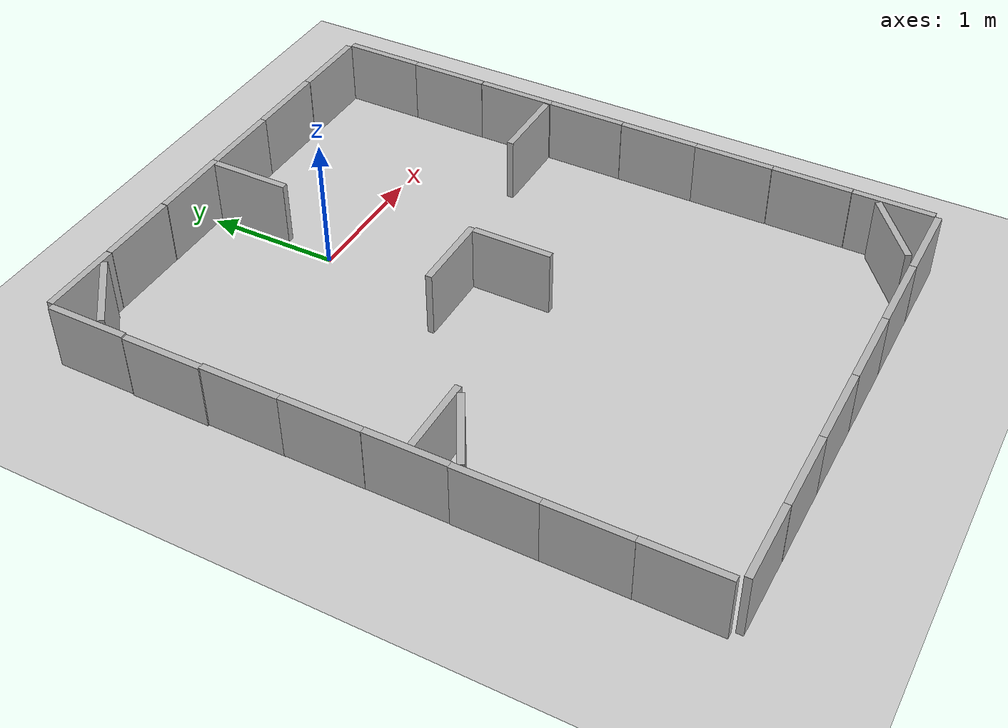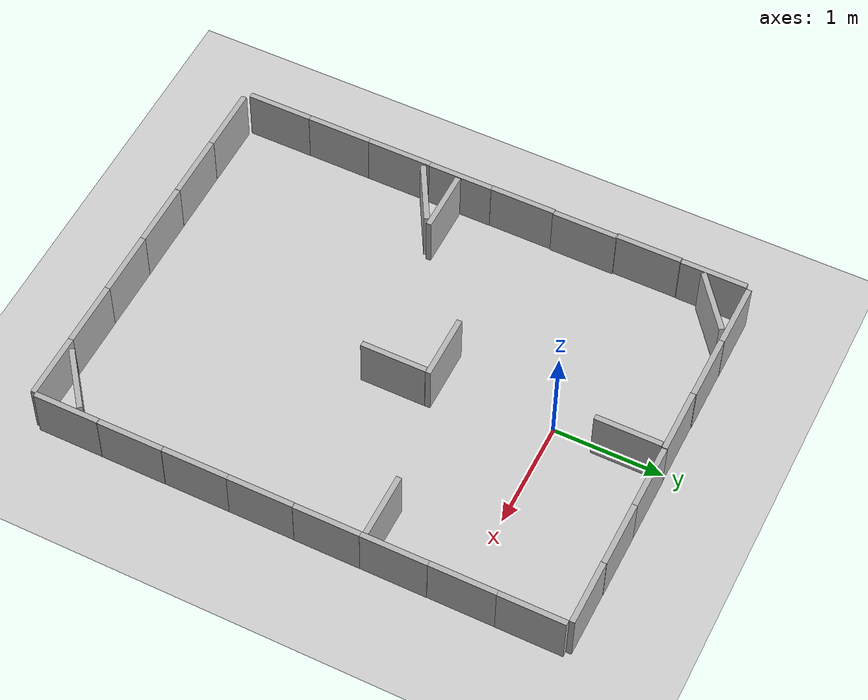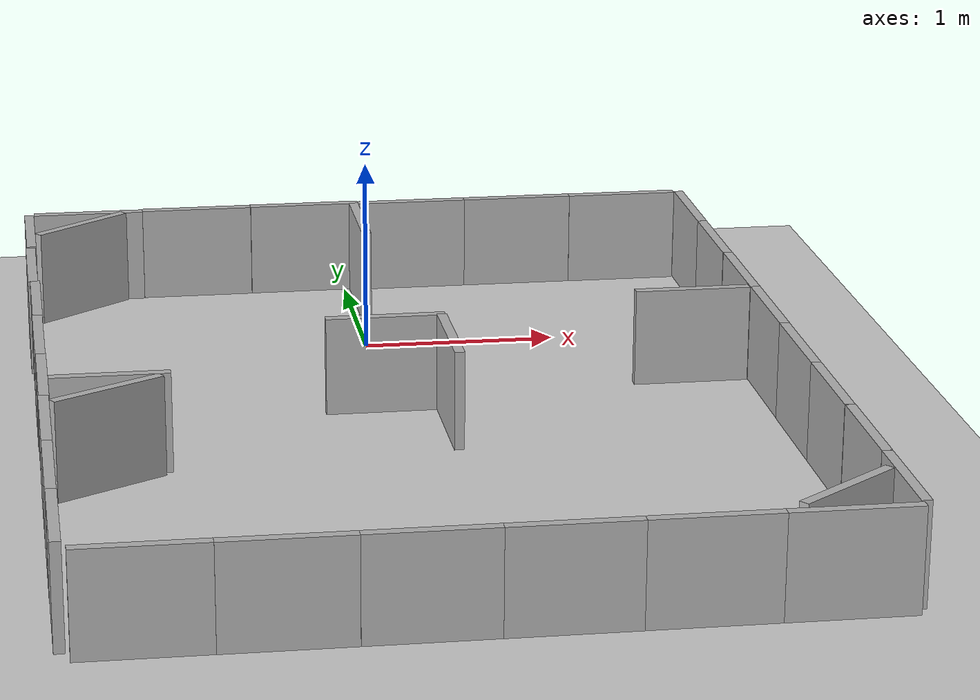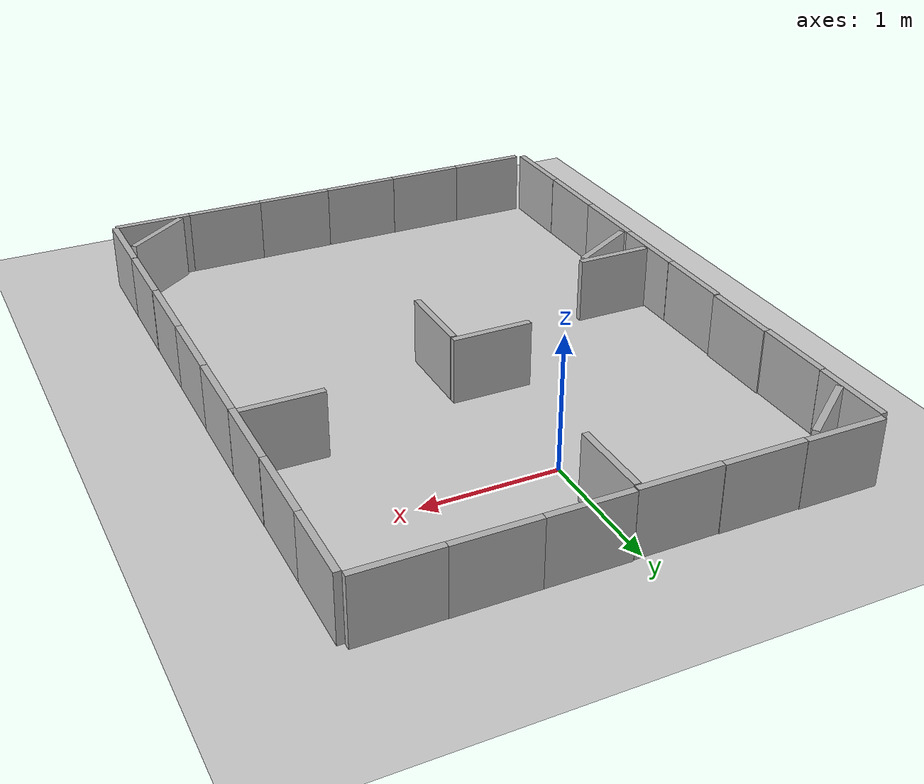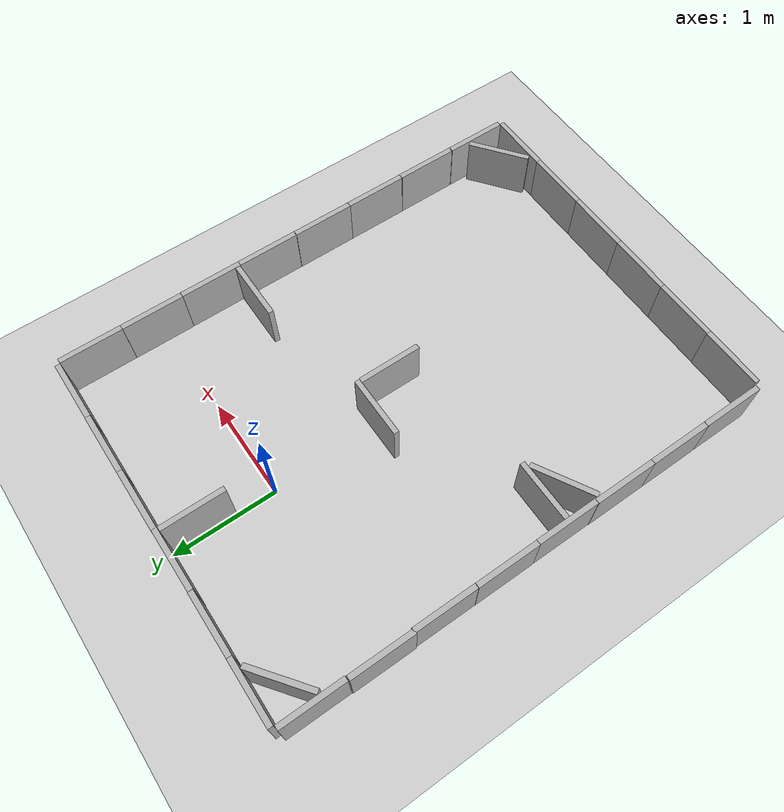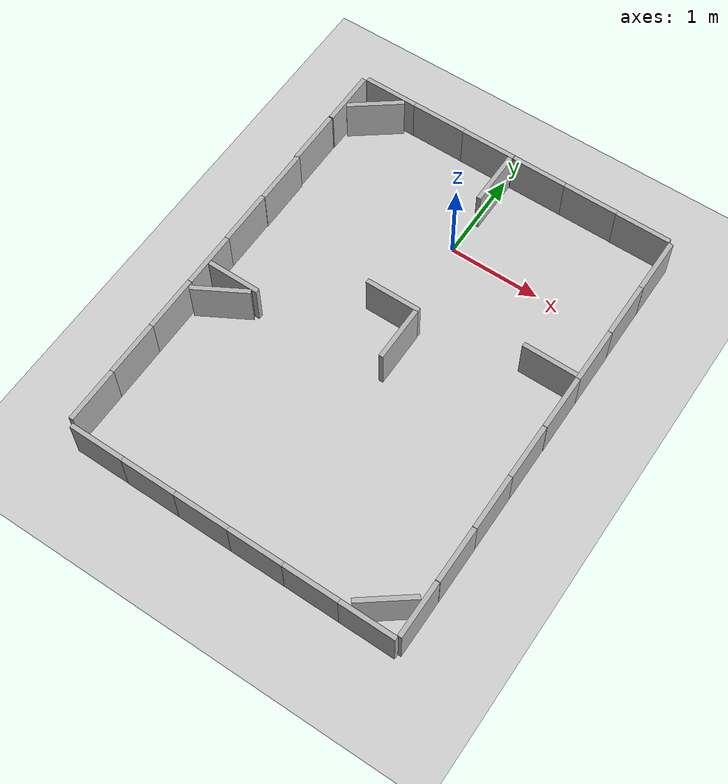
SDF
<?xml version="1.0"?>
<sdf version='1.8'>
  <world name='default'>
    <physics type="ode">
      <real_time_update_rate>1000.0</real_time_update_rate>
      <max_step_size>0.001</max_step_size>
      <real_time_factor>1</real_time_factor>
      <ode>
        <solver>
          <type>quick</type>
          <iters>150</iters>
          <precon_iters>0</precon_iters>
          <sor>1.400000</sor>
          <use_dynamic_moi_rescaling>1</use_dynamic_moi_rescaling>
        </solver>
        <constraints>
          <cfm>0.00001</cfm>
          <erp>0.2</erp>
          <contact_max_correcting_vel>2000.000000</contact_max_correcting_vel>
          <contact_surface_layer>0.01000</contact_surface_layer>
        </constraints>
      </ode>
    </physics>
    <plugin
      filename="gz-sim-physics-system"
      name="gz::sim::systems::Physics">
    </plugin>
    <plugin
      filename="gz-sim-user-commands-system"
      name="gz::sim::systems::UserCommands">
    </plugin>
    <plugin
      filename="gz-sim-scene-broadcaster-system"
      name="gz::sim::systems::SceneBroadcaster">
    </plugin>
    <plugin
      filename="gz-sim-sensors-system"
      name="gz::sim::systems::Sensors">
      <render_engine>ogre2</render_engine>
    </plugin>
    <plugin
      filename="gz-sim-imu-system"
      name="gz::sim::systems::Imu">
    </plugin>

    <gravity>0 0 -9.8000000000000007</gravity>
    <magnetic_field>5.5644999999999998e-06 2.2875799999999999e-05 -4.2388400000000002e-05</magnetic_field>
    <atmosphere type='adiabatic'/>
    <scene>
      <ambient>0.400000006 0.400000006 0.400000006 1</ambient>
      <background>0.699999988 0.699999988 0.699999988 1</background>
      <shadows>true</shadows>
    </scene>
    <model name='ground_plane'>
      <static>true</static>
      <link name='link'>
        <collision name='collision'>
          <geometry>
            <plane>
              <normal>0 0 1</normal>
              <size>100 100</size>
            </plane>
          </geometry>
          <surface>
            <friction>
              <ode/>
            </friction>
            <bounce/>
            <contact/>
          </surface>
        </collision>
        <visual name='visual'>
          <geometry>
            <plane>
              <normal>0 0 1</normal>
              <size>100 100</size>
            </plane>
          </geometry>
          <material>
            <ambient>0.800000012 0.800000012 0.800000012 1</ambient>
            <diffuse>0.800000012 0.800000012 0.800000012 1</diffuse>
            <specular>0.800000012 0.800000012 0.800000012 1</specular>
          </material>
        </visual>
        <pose>0 0 0 0 0 0</pose>
        <inertial>
          <pose>0 0 0 0 0 0</pose>
          <mass>1</mass>
          <inertia>
            <ixx>1</ixx>
            <ixy>0</ixy>
            <ixz>0</ixz>
            <iyy>1</iyy>
            <iyz>0</iyz>
            <izz>1</izz>
          </inertia>
        </inertial>
        <enable_wind>false</enable_wind>
      </link>
      <pose>0 0 0 0 0 0</pose>
      <self_collide>false</self_collide>
    </model>
    <model name='box'>
      <pose>-1.7492099761962892 0.6777790188789368 0.26292604207992554 0 0 0</pose>
      <link name='box_link'>
        <inertial>
          <inertia>
            <ixx>0.16666</ixx>
            <ixy>0</ixy>
            <ixz>0</ixz>
            <iyy>0.16666</iyy>
            <iyz>0</iyz>
            <izz>0.16666</izz>
          </inertia>
          <mass>1</mass>
          <pose>0 0 0 0 0 0</pose>
        </inertial>
        <collision name='box_collision'>
          <geometry>
            <box>
              <size>0.050000000000000003 0.55 0.5</size>
            </box>
          </geometry>
          <surface>
            <friction>
              <ode/>
            </friction>
            <bounce/>
            <contact/>
          </surface>
        </collision>
        <visual name='box_visual'>
          <geometry>
            <box>
              <size>0.050000000000000003 0.59999999999999998 0.5</size>
            </box>
          </geometry>
          <material>
            <ambient>0.300000012 0.300000012 0.300000012 1</ambient>
            <diffuse>0.699999988 0.699999988 0.699999988 1</diffuse>
            <specular>1 1 1 1</specular>
          </material>
        </visual>
        <pose>0 0 0 0 0 0</pose>
        <enable_wind>false</enable_wind>
      </link>
      <static>false</static>
      <self_collide>false</self_collide>
    </model>
    <model name='box_1'>
      <pose>-1.755 0.07 0.26000000000000001 0 0 0</pose>
      <link name='box_link'>
        <inertial>
          <inertia>
            <ixx>0.16666</ixx>
            <ixy>0</ixy>
            <ixz>0</ixz>
            <iyy>0.16666</iyy>
            <iyz>0</iyz>
            <izz>0.16666</izz>
          </inertia>
          <mass>1</mass>
          <pose>0 0 0 0 0 0</pose>
        </inertial>
        <collision name='box_collision'>
          <geometry>
            <box>
              <size>0.050000000000000003 0.55 0.5</size>
            </box>
          </geometry>
          <surface>
            <friction>
              <ode/>
            </friction>
            <bounce/>
            <contact/>
          </surface>
        </collision>
        <visual name='box_visual'>
          <geometry>
            <box>
              <size>0.050000000000000003 0.59999999999999998 0.5</size>
            </box>
          </geometry>
          <material>
            <ambient>0.300000012 0.300000012 0.300000012 1</ambient>
            <diffuse>0.699999988 0.699999988 0.699999988 1</diffuse>
            <specular>1 1 1 1</specular>
          </material>
        </visual>
        <pose>0 0 0 0 0 0</pose>
        <enable_wind>false</enable_wind>
      </link>
      <static>false</static>
      <self_collide>false</self_collide>
    </model>
    <model name='box_2'>
      <pose>-1.745 -0.52 0.26000000000000001 0 0 0</pose>
      <link name='box_link'>
        <inertial>
          <inertia>
            <ixx>0.16666</ixx>
            <ixy>0</ixy>
            <ixz>0</ixz>
            <iyy>0.16666</iyy>
            <iyz>0</iyz>
            <izz>0.16666</izz>
          </inertia>
          <mass>1</mass>
          <pose>0 0 0 0 0 0</pose>
        </inertial>
        <collision name='box_collision'>
          <geometry>
            <box>
              <size>0.050000000000000003 0.55 0.5</size>
            </box>
          </geometry>
          <surface>
            <friction>
              <ode/>
            </friction>
            <bounce/>
            <contact/>
          </surface>
        </collision>
        <visual name='box_visual'>
          <geometry>
            <box>
              <size>0.050000000000000003 0.59999999999999998 0.5</size>
            </box>
          </geometry>
          <material>
            <ambient>0.300000012 0.300000012 0.300000012 1</ambient>
            <diffuse>0.699999988 0.699999988 0.699999988 1</diffuse>
            <specular>1 1 1 1</specular>
          </material>
        </visual>
        <pose>0 0 0 0 0 0</pose>
        <enable_wind>false</enable_wind>
      </link>
      <static>false</static>
      <self_collide>false</self_collide>
    </model>
    <model name='box_3'>
      <pose>-1.7476199626922608 -1.1138999462127686 0.26708531379699707 0 0 0</pose>
      <link name='box_link'>
        <inertial>
          <inertia>
            <ixx>0.16666</ixx>
            <ixy>0</ixy>
            <ixz>0</ixz>
            <iyy>0.16666</iyy>
            <iyz>0</iyz>
            <izz>0.16666</izz>
          </inertia>
          <mass>1</mass>
          <pose>0 0 0 0 0 0</pose>
        </inertial>
        <collision name='box_collision'>
          <geometry>
            <box>
              <size>0.050000000000000003 0.55 0.5</size>
            </box>
          </geometry>
          <surface>
            <friction>
              <ode/>
            </friction>
            <bounce/>
            <contact/>
          </surface>
        </collision>
        <visual name='box_visual'>
          <geometry>
            <box>
              <size>0.050000000000000003 0.59999999999999998 0.5</size>
            </box>
          </geometry>
          <material>
            <ambient>0.300000012 0.300000012 0.300000012 1</ambient>
            <diffuse>0.699999988 0.699999988 0.699999988 1</diffuse>
            <specular>1 1 1 1</specular>
          </material>
        </visual>
        <pose>0 0 0 0 0 0</pose>
        <enable_wind>false</enable_wind>
      </link>
      <static>false</static>
      <self_collide>false</self_collide>
    </model>
    <model name='box_4'>
      <pose>-1.7455800533294679 -1.7115800380706787 0.26702764630317688 0 0 0</pose>
      <link name='box_link'>
        <inertial>
          <inertia>
            <ixx>0.16666</ixx>
            <ixy>0</ixy>
            <ixz>0</ixz>
            <iyy>0.16666</iyy>
            <iyz>0</iyz>
            <izz>0.16666</izz>
          </inertia>
          <mass>1</mass>
          <pose>0 0 0 0 0 0</pose>
        </inertial>
        <collision name='box_collision'>
          <geometry>
            <box>
              <size>0.050000000000000003 0.55 0.5</size>
            </box>
          </geometry>
          <surface>
            <friction>
              <ode/>
            </friction>
            <bounce/>
            <contact/>
          </surface>
        </collision>
        <visual name='box_visual'>
          <geometry>
            <box>
              <size>0.050000000000000003 0.59999999999999998 0.5</size>
            </box>
          </geometry>
          <material>
            <ambient>0.300000012 0.300000012 0.300000012 1</ambient>
            <diffuse>0.699999988 0.699999988 0.699999988 1</diffuse>
            <specular>1 1 1 1</specular>
          </material>
        </visual>
        <pose>0 0 0 0 0 0</pose>
        <enable_wind>false</enable_wind>
      </link>
      <static>false</static>
      <self_collide>false</self_collide>
    </model>
    <model name='box_5'>
      <pose>-1.7484199762344361 -2.311429977416992 0.26691371202468872 0 0 0</pose>
      <link name='box_link'>
        <inertial>
          <inertia>
            <ixx>0.16666</ixx>
            <ixy>0</ixy>
            <ixz>0</ixz>
            <iyy>0.16666</iyy>
            <iyz>0</iyz>
            <izz>0.16666</izz>
          </inertia>
          <mass>1</mass>
          <pose>0 0 0 0 0 0</pose>
        </inertial>
        <collision name='box_collision'>
          <geometry>
            <box>
              <size>0.050000000000000003 0.55 0.5</size>
            </box>
          </geometry>
          <surface>
            <friction>
              <ode/>
            </friction>
            <bounce/>
            <contact/>
          </surface>
        </collision>
        <visual name='box_visual'>
          <geometry>
            <box>
              <size>0.050000000000000003 0.59999999999999998 0.5</size>
            </box>
          </geometry>
          <material>
            <ambient>0.300000012 0.300000012 0.300000012 1</ambient>
            <diffuse>0.699999988 0.699999988 0.699999988 1</diffuse>
            <specular>1 1 1 1</specular>
          </material>
        </visual>
        <pose>0 0 0 0 0 0</pose>
        <enable_wind>false</enable_wind>
      </link>
      <static>false</static>
      <self_collide>false</self_collide>
    </model>
    <model name='box_6'>
      <pose>-1.7483800411224366 -2.9101500511169434 0.26712024211883545 0 0 0</pose>
      <link name='box_link'>
        <inertial>
          <inertia>
            <ixx>0.16666</ixx>
            <ixy>0</ixy>
            <ixz>0</ixz>
            <iyy>0.16666</iyy>
            <iyz>0</iyz>
            <izz>0.16666</izz>
          </inertia>
          <mass>1</mass>
          <pose>0 0 0 0 0 0</pose>
        </inertial>
        <collision name='box_collision'>
          <geometry>
            <box>
              <size>0.050000000000000003 0.55 0.5</size>
            </box>
          </geometry>
          <surface>
            <friction>
              <ode/>
            </friction>
            <bounce/>
            <contact/>
          </surface>
        </collision>
        <visual name='box_visual'>
          <geometry>
            <box>
              <size>0.050000000000000003 0.59999999999999998 0.5</size>
            </box>
          </geometry>
          <material>
            <ambient>0.300000012 0.300000012 0.300000012 1</ambient>
            <diffuse>0.699999988 0.699999988 0.699999988 1</diffuse>
            <specular>1 1 1 1</specular>
          </material>
        </visual>
        <pose>0 0 0 0 0 0</pose>
        <enable_wind>false</enable_wind>
      </link>
      <static>false</static>
      <self_collide>false</self_collide>
    </model>
    <model name='box_7'>
      <pose>-1.7471500396728517 -3.5036098957061768 0.26729947328567505 0 0 0</pose>
      <link name='box_link'>
        <inertial>
          <inertia>
            <ixx>0.16666</ixx>
            <ixy>0</ixy>
            <ixz>0</ixz>
            <iyy>0.16666</iyy>
            <iyz>0</iyz>
            <izz>0.16666</izz>
          </inertia>
          <mass>1</mass>
          <pose>0 0 0 0 0 0</pose>
        </inertial>
        <collision name='box_collision'>
          <geometry>
            <box>
              <size>0.050000000000000003 0.55 0.5</size>
            </box>
          </geometry>
          <surface>
            <friction>
              <ode/>
            </friction>
            <bounce/>
            <contact/>
          </surface>
        </collision>
        <visual name='box_visual'>
          <geometry>
            <box>
              <size>0.050000000000000003 0.59999999999999998 0.5</size>
            </box>
          </geometry>
          <material>
            <ambient>0.300000012 0.300000012 0.300000012 1</ambient>
            <diffuse>0.699999988 0.699999988 0.699999988 1</diffuse>
            <specular>1 1 1 1</specular>
          </material>
        </visual>
        <pose>0 0 0 0 0 0</pose>
        <enable_wind>false</enable_wind>
      </link>
      <static>false</static>
      <self_collide>false</self_collide>
    </model>
    <model name='box_8'>
      <pose>-1.422499990463257 1.0066399574279787 0.25750440359115601 0 0 1.5658000872875657</pose>
      <link name='box_link'>
        <inertial>
          <inertia>
            <ixx>0.16666</ixx>
            <ixy>0</ixy>
            <ixz>0</ixz>
            <iyy>0.16666</iyy>
            <iyz>0</iyz>
            <izz>0.16666</izz>
          </inertia>
          <mass>1</mass>
          <pose>0 0 0 0 0 0</pose>
        </inertial>
        <collision name='box_collision'>
          <geometry>
            <box>
              <size>0.050000000000000003 0.55 0.5</size>
            </box>
          </geometry>
          <surface>
            <friction>
              <ode/>
            </friction>
            <bounce/>
            <contact/>
          </surface>
        </collision>
        <visual name='box_visual'>
          <geometry>
            <box>
              <size>0.050000000000000003 0.59999999999999998 0.5</size>
            </box>
          </geometry>
          <material>
            <ambient>0.300000012 0.300000012 0.300000012 1</ambient>
            <diffuse>0.699999988 0.699999988 0.699999988 1</diffuse>
            <specular>1 1 1 1</specular>
          </material>
        </visual>
        <pose>0 0 0 0 0 0</pose>
        <enable_wind>false</enable_wind>
      </link>
      <static>false</static>
      <self_collide>false</self_collide>
    </model>
    <model name='box_8_1'>
      <pose>-0.8258979976177215 1.0029499530792234 0.26086625456809998 0 0 1.56841005300998</pose>
      <link name='box_link'>
        <inertial>
          <inertia>
            <ixx>0.16666</ixx>
            <ixy>0</ixy>
            <ixz>0</ixz>
            <iyy>0.16666</iyy>
            <iyz>0</iyz>
            <izz>0.16666</izz>
          </inertia>
          <mass>1</mass>
          <pose>0 0 0 0 0 0</pose>
        </inertial>
        <collision name='box_collision'>
          <geometry>
            <box>
              <size>0.050000000000000003 0.55 0.5</size>
            </box>
          </geometry>
          <surface>
            <friction>
              <ode/>
            </friction>
            <bounce/>
            <contact/>
          </surface>
        </collision>
        <visual name='box_visual'>
          <geometry>
            <box>
              <size>0.050000000000000003 0.59999999999999998 0.5</size>
            </box>
          </geometry>
          <material>
            <ambient>0.300000012 0.300000012 0.300000012 1</ambient>
            <diffuse>0.699999988 0.699999988 0.699999988 1</diffuse>
            <specular>1 1 1 1</specular>
          </material>
        </visual>
        <pose>0 0 0 0 0 0</pose>
        <enable_wind>false</enable_wind>
      </link>
      <static>false</static>
      <self_collide>false</self_collide>
    </model>
    <model name='box_8_2'>
      <pose>-0.22502515316009508 0.9984285831451414 0.2626970112323761 0 0 1.5700000841906609</pose>
      <link name='box_link'>
        <inertial>
          <inertia>
            <ixx>0.16666</ixx>
            <ixy>0</ixy>
            <ixz>0</ixz>
            <iyy>0.16666</iyy>
            <iyz>0</iyz>
            <izz>0.16666</izz>
          </inertia>
          <mass>1</mass>
          <pose>0 0 0 0 0 0</pose>
        </inertial>
        <collision name='box_collision'>
          <geometry>
            <box>
              <size>0.050000000000000003 0.55 0.5</size>
            </box>
          </geometry>
          <surface>
            <friction>
              <ode/>
            </friction>
            <bounce/>
            <contact/>
          </surface>
        </collision>
        <visual name='box_visual'>
          <geometry>
            <box>
              <size>0.050000000000000003 0.59999999999999998 0.5</size>
            </box>
          </geometry>
          <material>
            <ambient>0.300000012 0.300000012 0.300000012 1</ambient>
            <diffuse>0.699999988 0.699999988 0.699999988 1</diffuse>
            <specular>1 1 1 1</specular>
          </material>
        </visual>
        <pose>0 0 0 0 0 0</pose>
        <enable_wind>false</enable_wind>
      </link>
      <static>false</static>
      <self_collide>false</self_collide>
    </model>
    <model name='box_8_3'>
      <pose>0.3772270375607515 0.9991031217496191 0.25750398635864258 0 0 1.5658000872875657</pose>
      <link name='box_link'>
        <inertial>
          <inertia>
            <ixx>0.16666</ixx>
            <ixy>0</ixy>
            <ixz>0</ixz>
            <iyy>0.16666</iyy>
            <iyz>0</iyz>
            <izz>0.16666</izz>
          </inertia>
          <mass>1</mass>
          <pose>0 0 0 0 0 0</pose>
        </inertial>
        <collision name='box_collision'>
          <geometry>
            <box>
              <size>0.050000000000000003 0.55 0.5</size>
            </box>
          </geometry>
          <surface>
            <friction>
              <ode/>
            </friction>
            <bounce/>
            <contact/>
          </surface>
        </collision>
        <visual name='box_visual'>
          <geometry>
            <box>
              <size>0.050000000000000003 0.59999999999999998 0.5</size>
            </box>
          </geometry>
          <material>
            <ambient>0.300000012 0.300000012 0.300000012 1</ambient>
            <diffuse>0.699999988 0.699999988 0.699999988 1</diffuse>
            <specular>1 1 1 1</specular>
          </material>
        </visual>
        <pose>0 0 0 0 0 0</pose>
        <enable_wind>false</enable_wind>
      </link>
      <static>false</static>
      <self_collide>false</self_collide>
    </model>
    <model name='box_8_4'>
      <pose>0.976962914249203 0.9965046031326728 0.25750398635864258 0 0 1.5658000872875657</pose>
      <link name='box_link'>
        <inertial>
          <inertia>
            <ixx>0.16666</ixx>
            <ixy>0</ixy>
            <ixz>0</ixz>
            <iyy>0.16666</iyy>
            <iyz>0</iyz>
            <izz>0.16666</izz>
          </inertia>
          <mass>1</mass>
          <pose>0 0 0 0 0 0</pose>
        </inertial>
        <collision name='box_collision'>
          <geometry>
            <box>
              <size>0.050000000000000003 0.55 0.5</size>
            </box>
          </geometry>
          <surface>
            <friction>
              <ode/>
            </friction>
            <bounce/>
            <contact/>
          </surface>
        </collision>
        <visual name='box_visual'>
          <geometry>
            <box>
              <size>0.050000000000000003 0.59999999999999998 0.5</size>
            </box>
          </geometry>
          <material>
            <ambient>0.300000012 0.300000012 0.300000012 1</ambient>
            <diffuse>0.699999988 0.699999988 0.699999988 1</diffuse>
            <specular>1 1 1 1</specular>
          </material>
        </visual>
        <pose>0 0 0 0 0 0</pose>
        <enable_wind>false</enable_wind>
      </link>
      <static>false</static>
      <self_collide>false</self_collide>
    </model>
    <model name='box_8_5'>
      <pose>1.5750763394988407 0.9913790535651015 0.25750398635864258 0 0 1.5658000872875657</pose>
      <link name='box_link'>
        <inertial>
          <inertia>
            <ixx>0.16666</ixx>
            <ixy>0</ixy>
            <ixz>0</ixz>
            <iyy>0.16666</iyy>
            <iyz>0</iyz>
            <izz>0.16666</izz>
          </inertia>
          <mass>1</mass>
          <pose>0 0 0 0 0 0</pose>
        </inertial>
        <collision name='box_collision'>
          <geometry>
            <box>
              <size>0.050000000000000003 0.55 0.5</size>
            </box>
          </geometry>
          <surface>
            <friction>
              <ode/>
            </friction>
            <bounce/>
            <contact/>
          </surface>
        </collision>
        <visual name='box_visual'>
          <geometry>
            <box>
              <size>0.050000000000000003 0.59999999999999998 0.5</size>
            </box>
          </geometry>
          <material>
            <ambient>0.300000012 0.300000012 0.300000012 1</ambient>
            <diffuse>0.699999988 0.699999988 0.699999988 1</diffuse>
            <specular>1 1 1 1</specular>
          </material>
        </visual>
        <pose>0 0 0 0 0 0</pose>
        <enable_wind>false</enable_wind>
      </link>
      <static>false</static>
      <self_collide>false</self_collide>
    </model>
    <model name='box_9'>
      <pose>1.901252963941734 0.6655293306074757 0.26292601227760315 0 0 0</pose>
      <link name='box_link'>
        <inertial>
          <inertia>
            <ixx>0.16666</ixx>
            <ixy>0</ixy>
            <ixz>0</ixz>
            <iyy>0.16666</iyy>
            <iyz>0</iyz>
            <izz>0.16666</izz>
          </inertia>
          <mass>1</mass>
          <pose>0 0 0 0 0 0</pose>
        </inertial>
        <collision name='box_collision'>
          <geometry>
            <box>
              <size>0.050000000000000003 0.55 0.5</size>
            </box>
          </geometry>
          <surface>
            <friction>
              <ode/>
            </friction>
            <bounce/>
            <contact/>
          </surface>
        </collision>
        <visual name='box_visual'>
          <geometry>
            <box>
              <size>0.050000000000000003 0.59999999999999998 0.5</size>
            </box>
          </geometry>
          <material>
            <ambient>0.300000012 0.300000012 0.300000012 1</ambient>
            <diffuse>0.699999988 0.699999988 0.699999988 1</diffuse>
            <specular>1 1 1 1</specular>
          </material>
        </visual>
        <pose>0 0 0 0 0 0</pose>
        <enable_wind>false</enable_wind>
      </link>
      <static>false</static>
      <self_collide>false</self_collide>
    </model>
    <model name='box_10'>
      <pose>1.9007026675514749 0.06519554283408446 0.26292601227760315 0 0 0</pose>
      <link name='box_link'>
        <inertial>
          <inertia>
            <ixx>0.16666</ixx>
            <ixy>0</ixy>
            <ixz>0</ixz>
            <iyy>0.16666</iyy>
            <iyz>0</iyz>
            <izz>0.16666</izz>
          </inertia>
          <mass>1</mass>
          <pose>0 0 0 0 0 0</pose>
        </inertial>
        <collision name='box_collision'>
          <geometry>
            <box>
              <size>0.050000000000000003 0.55 0.5</size>
            </box>
          </geometry>
          <surface>
            <friction>
              <ode/>
            </friction>
            <bounce/>
            <contact/>
          </surface>
        </collision>
        <visual name='box_visual'>
          <geometry>
            <box>
              <size>0.050000000000000003 0.59999999999999998 0.5</size>
            </box>
          </geometry>
          <material>
            <ambient>0.300000012 0.300000012 0.300000012 1</ambient>
            <diffuse>0.699999988 0.699999988 0.699999988 1</diffuse>
            <specular>1 1 1 1</specular>
          </material>
        </visual>
        <pose>0 0 0 0 0 0</pose>
        <enable_wind>false</enable_wind>
      </link>
      <static>false</static>
      <self_collide>false</self_collide>
    </model>
    <model name='box_11'>
      <pose>1.9025927926499158 -0.5350272778976182 0.26292601227760315 0 0 0</pose>
      <link name='box_link'>
        <inertial>
          <inertia>
            <ixx>0.16666</ixx>
            <ixy>0</ixy>
            <ixz>0</ixz>
            <iyy>0.16666</iyy>
            <iyz>0</iyz>
            <izz>0.16666</izz>
          </inertia>
          <mass>1</mass>
          <pose>0 0 0 0 0 0</pose>
        </inertial>
        <collision name='box_collision'>
          <geometry>
            <box>
              <size>0.050000000000000003 0.55 0.5</size>
            </box>
          </geometry>
          <surface>
            <friction>
              <ode/>
            </friction>
            <bounce/>
            <contact/>
          </surface>
        </collision>
        <visual name='box_visual'>
          <geometry>
            <box>
              <size>0.050000000000000003 0.59999999999999998 0.5</size>
            </box>
          </geometry>
          <material>
            <ambient>0.300000012 0.300000012 0.300000012 1</ambient>
            <diffuse>0.699999988 0.699999988 0.699999988 1</diffuse>
            <specular>1 1 1 1</specular>
          </material>
        </visual>
        <pose>0 0 0 0 0 0</pose>
        <enable_wind>false</enable_wind>
      </link>
      <static>false</static>
      <self_collide>false</self_collide>
    </model>
    <model name='box_12'>
      <pose>1.9031152505346234 -1.1352186579326506 0.26292601227760315 0 0 0</pose>
      <link name='box_link'>
        <inertial>
          <inertia>
            <ixx>0.16666</ixx>
            <ixy>0</ixy>
            <ixz>0</ixz>
            <iyy>0.16666</iyy>
            <iyz>0</iyz>
            <izz>0.16666</izz>
          </inertia>
          <mass>1</mass>
          <pose>0 0 0 0 0 0</pose>
        </inertial>
        <collision name='box_collision'>
          <geometry>
            <box>
              <size>0.050000000000000003 0.55 0.5</size>
            </box>
          </geometry>
          <surface>
            <friction>
              <ode/>
            </friction>
            <bounce/>
            <contact/>
          </surface>
        </collision>
        <visual name='box_visual'>
          <geometry>
            <box>
              <size>0.050000000000000003 0.59999999999999998 0.5</size>
            </box>
          </geometry>
          <material>
            <ambient>0.300000012 0.300000012 0.300000012 1</ambient>
            <diffuse>0.699999988 0.699999988 0.699999988 1</diffuse>
            <specular>1 1 1 1</specular>
          </material>
        </visual>
        <pose>0 0 0 0 0 0</pose>
        <enable_wind>false</enable_wind>
      </link>
      <static>false</static>
      <self_collide>false</self_collide>
    </model>
    <model name='box_13'>
      <pose>1.9017948704934358 -1.7371728259073804 0.26292601227760315 0 0 0</pose>
      <link name='box_link'>
        <inertial>
          <inertia>
            <ixx>0.16666</ixx>
            <ixy>0</ixy>
            <ixz>0</ixz>
            <iyy>0.16666</iyy>
            <iyz>0</iyz>
            <izz>0.16666</izz>
          </inertia>
          <mass>1</mass>
          <pose>0 0 0 0 0 0</pose>
        </inertial>
        <collision name='box_collision'>
          <geometry>
            <box>
              <size>0.050000000000000003 0.55 0.5</size>
            </box>
          </geometry>
          <surface>
            <friction>
              <ode/>
            </friction>
            <bounce/>
            <contact/>
          </surface>
        </collision>
        <visual name='box_visual'>
          <geometry>
            <box>
              <size>0.050000000000000003 0.59999999999999998 0.5</size>
            </box>
          </geometry>
          <material>
            <ambient>0.300000012 0.300000012 0.300000012 1</ambient>
            <diffuse>0.699999988 0.699999988 0.699999988 1</diffuse>
            <specular>1 1 1 1</specular>
          </material>
        </visual>
        <pose>0 0 0 0 0 0</pose>
        <enable_wind>false</enable_wind>
      </link>
      <static>false</static>
      <self_collide>false</self_collide>
    </model>
    <model name='box_14'>
      <pose>1.9017614305352368 -2.33662920422992 0.26292601227760315 0 0 0</pose>
      <link name='box_link'>
        <inertial>
          <inertia>
            <ixx>0.16666</ixx>
            <ixy>0</ixy>
            <ixz>0</ixz>
            <iyy>0.16666</iyy>
            <iyz>0</iyz>
            <izz>0.16666</izz>
          </inertia>
          <mass>1</mass>
          <pose>0 0 0 0 0 0</pose>
        </inertial>
        <collision name='box_collision'>
          <geometry>
            <box>
              <size>0.050000000000000003 0.55 0.5</size>
            </box>
          </geometry>
          <surface>
            <friction>
              <ode/>
            </friction>
            <bounce/>
            <contact/>
          </surface>
        </collision>
        <visual name='box_visual'>
          <geometry>
            <box>
              <size>0.050000000000000003 0.59999999999999998 0.5</size>
            </box>
          </geometry>
          <material>
            <ambient>0.300000012 0.300000012 0.300000012 1</ambient>
            <diffuse>0.699999988 0.699999988 0.699999988 1</diffuse>
            <specular>1 1 1 1</specular>
          </material>
        </visual>
        <pose>0 0 0 0 0 0</pose>
        <enable_wind>false</enable_wind>
      </link>
      <static>false</static>
      <self_collide>false</self_collide>
    </model>
    <model name='box_15'>
      <pose>1.9030006269886166 -2.938907322034053 0.26292601227760315 0 0 0</pose>
      <link name='box_link'>
        <inertial>
          <inertia>
            <ixx>0.16666</ixx>
            <ixy>0</ixy>
            <ixz>0</ixz>
            <iyy>0.16666</iyy>
            <iyz>0</iyz>
            <izz>0.16666</izz>
          </inertia>
          <mass>1</mass>
          <pose>0 0 0 0 0 0</pose>
        </inertial>
        <collision name='box_collision'>
          <geometry>
            <box>
              <size>0.050000000000000003 0.55 0.5</size>
            </box>
          </geometry>
          <surface>
            <friction>
              <ode/>
            </friction>
            <bounce/>
            <contact/>
          </surface>
        </collision>
        <visual name='box_visual'>
          <geometry>
            <box>
              <size>0.050000000000000003 0.59999999999999998 0.5</size>
            </box>
          </geometry>
          <material>
            <ambient>0.300000012 0.300000012 0.300000012 1</ambient>
            <diffuse>0.699999988 0.699999988 0.699999988 1</diffuse>
            <specular>1 1 1 1</specular>
          </material>
        </visual>
        <pose>0 0 0 0 0 0</pose>
        <enable_wind>false</enable_wind>
      </link>
      <static>false</static>
      <self_collide>false</self_collide>
    </model>
    <model name='box_16'>
      <pose>1.9024764676781758 -3.5421945732274764 0.26292601227760315 0 0 0</pose>
      <link name='box_link'>
        <inertial>
          <inertia>
            <ixx>0.16666</ixx>
            <ixy>0</ixy>
            <ixz>0</ixz>
            <iyy>0.16666</iyy>
            <iyz>0</iyz>
            <izz>0.16666</izz>
          </inertia>
          <mass>1</mass>
          <pose>0 0 0 0 0 0</pose>
        </inertial>
        <collision name='box_collision'>
          <geometry>
            <box>
              <size>0.050000000000000003 0.55 0.5</size>
            </box>
          </geometry>
          <surface>
            <friction>
              <ode/>
            </friction>
            <bounce/>
            <contact/>
          </surface>
        </collision>
        <visual name='box_visual'>
          <geometry>
            <box>
              <size>0.050000000000000003 0.59999999999999998 0.5</size>
            </box>
          </geometry>
          <material>
            <ambient>0.300000012 0.300000012 0.300000012 1</ambient>
            <diffuse>0.699999988 0.699999988 0.699999988 1</diffuse>
            <specular>1 1 1 1</specular>
          </material>
        </visual>
        <pose>0 0 0 0 0 0</pose>
        <enable_wind>false</enable_wind>
      </link>
      <static>false</static>
      <self_collide>false</self_collide>
    </model>
    <model name='box_8_5_1'>
      <pose>1.5920975934162764 -3.865565579247321 0.25750398635864258 0 0 1.5658000872875657</pose>
      <link name='box_link'>
        <inertial>
          <inertia>
            <ixx>0.16666</ixx>
            <ixy>0</ixy>
            <ixz>0</ixz>
            <iyy>0.16666</iyy>
            <iyz>0</iyz>
            <izz>0.16666</izz>
          </inertia>
          <mass>1</mass>
          <pose>0 0 0 0 0 0</pose>
        </inertial>
        <collision name='box_collision'>
          <geometry>
            <box>
              <size>0.050000000000000003 0.55 0.5</size>
            </box>
          </geometry>
          <surface>
            <friction>
              <ode/>
            </friction>
            <bounce/>
            <contact/>
          </surface>
        </collision>
        <visual name='box_visual'>
          <geometry>
            <box>
              <size>0.050000000000000003 0.59999999999999998 0.5</size>
            </box>
          </geometry>
          <material>
            <ambient>0.300000012 0.300000012 0.300000012 1</ambient>
            <diffuse>0.699999988 0.699999988 0.699999988 1</diffuse>
            <specular>1 1 1 1</specular>
          </material>
        </visual>
        <pose>0 0 0 0 0 0</pose>
        <enable_wind>false</enable_wind>
      </link>
      <static>false</static>
      <self_collide>false</self_collide>
    </model>
    <model name='box_8_5_2'>
      <pose>0.9933380653296057 -3.862349183830966 0.25750398635864258 0 0 1.5658000872875657</pose>
      <link name='box_link'>
        <inertial>
          <inertia>
            <ixx>0.16666</ixx>
            <ixy>0</ixy>
            <ixz>0</ixz>
            <iyy>0.16666</iyy>
            <iyz>0</iyz>
            <izz>0.16666</izz>
          </inertia>
          <mass>1</mass>
          <pose>0 0 0 0 0 0</pose>
        </inertial>
        <collision name='box_collision'>
          <geometry>
            <box>
              <size>0.050000000000000003 0.55 0.5</size>
            </box>
          </geometry>
          <surface>
            <friction>
              <ode/>
            </friction>
            <bounce/>
            <contact/>
          </surface>
        </collision>
        <visual name='box_visual'>
          <geometry>
            <box>
              <size>0.050000000000000003 0.59999999999999998 0.5</size>
            </box>
          </geometry>
          <material>
            <ambient>0.300000012 0.300000012 0.300000012 1</ambient>
            <diffuse>0.699999988 0.699999988 0.699999988 1</diffuse>
            <specular>1 1 1 1</specular>
          </material>
        </visual>
        <pose>0 0 0 0 0 0</pose>
        <enable_wind>false</enable_wind>
      </link>
      <static>false</static>
      <self_collide>false</self_collide>
    </model>
    <model name='box_8_5_3'>
      <pose>0.3940764522698835 -3.8600206948799998 0.25750398635864258 0 0 1.5658000872875657</pose>
      <link name='box_link'>
        <inertial>
          <inertia>
            <ixx>0.16666</ixx>
            <ixy>0</ixy>
            <ixz>0</ixz>
            <iyy>0.16666</iyy>
            <iyz>0</iyz>
            <izz>0.16666</izz>
          </inertia>
          <mass>1</mass>
          <pose>0 0 0 0 0 0</pose>
        </inertial>
        <collision name='box_collision'>
          <geometry>
            <box>
              <size>0.050000000000000003 0.55 0.5</size>
            </box>
          </geometry>
          <surface>
            <friction>
              <ode/>
            </friction>
            <bounce/>
            <contact/>
          </surface>
        </collision>
        <visual name='box_visual'>
          <geometry>
            <box>
              <size>0.050000000000000003 0.59999999999999998 0.5</size>
            </box>
          </geometry>
          <material>
            <ambient>0.300000012 0.300000012 0.300000012 1</ambient>
            <diffuse>0.699999988 0.699999988 0.699999988 1</diffuse>
            <specular>1 1 1 1</specular>
          </material>
        </visual>
        <pose>0 0 0 0 0 0</pose>
        <enable_wind>false</enable_wind>
      </link>
      <static>false</static>
      <self_collide>false</self_collide>
    </model>
    <model name='box_8_5_4'>
      <pose>-0.2048322477657616 -3.856848256590511 0.25750398635864258 0 0 1.5658000872875657</pose>
      <link name='box_link'>
        <inertial>
          <inertia>
            <ixx>0.16666</ixx>
            <ixy>0</ixy>
            <ixz>0</ixz>
            <iyy>0.16666</iyy>
            <iyz>0</iyz>
            <izz>0.16666</izz>
          </inertia>
          <mass>1</mass>
          <pose>0 0 0 0 0 0</pose>
        </inertial>
        <collision name='box_collision'>
          <geometry>
            <box>
              <size>0.050000000000000003 0.55 0.5</size>
            </box>
          </geometry>
          <surface>
            <friction>
              <ode/>
            </friction>
            <bounce/>
            <contact/>
          </surface>
        </collision>
        <visual name='box_visual'>
          <geometry>
            <box>
              <size>0.050000000000000003 0.59999999999999998 0.5</size>
            </box>
          </geometry>
          <material>
            <ambient>0.300000012 0.300000012 0.300000012 1</ambient>
            <diffuse>0.699999988 0.699999988 0.699999988 1</diffuse>
            <specular>1 1 1 1</specular>
          </material>
        </visual>
        <pose>0 0 0 0 0 0</pose>
        <enable_wind>false</enable_wind>
      </link>
      <static>false</static>
      <self_collide>false</self_collide>
    </model>
    <model name='box_8_5_5'>
      <pose>-0.805121158882265 -3.8538894517536315 0.25750398635864258 0 0 1.5658000872875657</pose>
      <link name='box_link'>
        <inertial>
          <inertia>
            <ixx>0.16666</ixx>
            <ixy>0</ixy>
            <ixz>0</ixz>
            <iyy>0.16666</iyy>
            <iyz>0</iyz>
            <izz>0.16666</izz>
          </inertia>
          <mass>1</mass>
          <pose>0 0 0 0 0 0</pose>
        </inertial>
        <collision name='box_collision'>
          <geometry>
            <box>
              <size>0.050000000000000003 0.55 0.5</size>
            </box>
          </geometry>
          <surface>
            <friction>
              <ode/>
            </friction>
            <bounce/>
            <contact/>
          </surface>
        </collision>
        <visual name='box_visual'>
          <geometry>
            <box>
              <size>0.050000000000000003 0.59999999999999998 0.5</size>
            </box>
          </geometry>
          <material>
            <ambient>0.300000012 0.300000012 0.300000012 1</ambient>
            <diffuse>0.699999988 0.699999988 0.699999988 1</diffuse>
            <specular>1 1 1 1</specular>
          </material>
        </visual>
        <pose>0 0 0 0 0 0</pose>
        <enable_wind>false</enable_wind>
      </link>
      <static>false</static>
      <self_collide>false</self_collide>
    </model>
    <model name='box_8_5_6'>
      <pose>-1.4048431661426015 -3.8498007437380806 0.25750398635864258 0 0 1.5658000872875657</pose>
      <link name='box_link'>
        <inertial>
          <inertia>
            <ixx>0.16666</ixx>
            <ixy>0</ixy>
            <ixz>0</ixz>
            <iyy>0.16666</iyy>
            <iyz>0</iyz>
            <izz>0.16666</izz>
          </inertia>
          <mass>1</mass>
          <pose>0 0 0 0 0 0</pose>
        </inertial>
        <collision name='box_collision'>
          <geometry>
            <box>
              <size>0.050000000000000003 0.55 0.5</size>
            </box>
          </geometry>
          <surface>
            <friction>
              <ode/>
            </friction>
            <bounce/>
            <contact/>
          </surface>
        </collision>
        <visual name='box_visual'>
          <geometry>
            <box>
              <size>0.050000000000000003 0.59999999999999998 0.5</size>
            </box>
          </geometry>
          <material>
            <ambient>0.300000012 0.300000012 0.300000012 1</ambient>
            <diffuse>0.699999988 0.699999988 0.699999988 1</diffuse>
            <specular>1 1 1 1</specular>
          </material>
        </visual>
        <pose>0 0 0 0 0 0</pose>
        <enable_wind>false</enable_wind>
      </link>
      <static>false</static>
      <self_collide>false</self_collide>
    </model>
    <model name='box_8_5_7'>
      <pose>-1.4429923117618597 -1.7295482278429848 0.25750398635864258 0 0 1.5658000872875657</pose>
      <link name='box_link'>
        <inertial>
          <inertia>
            <ixx>0.16666</ixx>
            <ixy>0</ixy>
            <ixz>0</ixz>
            <iyy>0.16666</iyy>
            <iyz>0</iyz>
            <izz>0.16666</izz>
          </inertia>
          <mass>1</mass>
          <pose>0 0 0 0 0 0</pose>
        </inertial>
        <collision name='box_collision'>
          <geometry>
            <box>
              <size>0.050000000000000003 0.55 0.5</size>
            </box>
          </geometry>
          <surface>
            <friction>
              <ode/>
            </friction>
            <bounce/>
            <contact/>
          </surface>
        </collision>
        <visual name='box_visual'>
          <geometry>
            <box>
              <size>0.050000000000000003 0.59999999999999998 0.5</size>
            </box>
          </geometry>
          <material>
            <ambient>0.300000012 0.300000012 0.300000012 1</ambient>
            <diffuse>0.699999988 0.699999988 0.699999988 1</diffuse>
            <specular>1 1 1 1</specular>
          </material>
        </visual>
        <pose>0 0 0 0 0 0</pose>
        <enable_wind>false</enable_wind>
      </link>
      <static>false</static>
      <self_collide>false</self_collide>
    </model>
    <model name='box_8_5_9'>
      <pose>1.5856882813119442 -0.8030153485568308 0.25750398635864258 0 0 1.5658000872875657</pose>
      <link name='box_link'>
        <inertial>
          <inertia>
            <ixx>0.16666</ixx>
            <ixy>0</ixy>
            <ixz>0</ixz>
            <iyy>0.16666</iyy>
            <iyz>0</iyz>
            <izz>0.16666</izz>
          </inertia>
          <mass>1</mass>
          <pose>0 0 0 0 0 0</pose>
        </inertial>
        <collision name='box_collision'>
          <geometry>
            <box>
              <size>0.050000000000000003 0.55 0.5</size>
            </box>
          </geometry>
          <surface>
            <friction>
              <ode/>
            </friction>
            <bounce/>
            <contact/>
          </surface>
        </collision>
        <visual name='box_visual'>
          <geometry>
            <box>
              <size>0.050000000000000003 0.59999999999999998 0.5</size>
            </box>
          </geometry>
          <material>
            <ambient>0.300000012 0.300000012 0.300000012 1</ambient>
            <diffuse>0.699999988 0.699999988 0.699999988 1</diffuse>
            <specular>1 1 1 1</specular>
          </material>
        </visual>
        <pose>0 0 0 0 0 0</pose>
        <enable_wind>false</enable_wind>
      </link>
      <static>false</static>
      <self_collide>false</self_collide>
    </model>
    <model name='box_1_1'>
      <pose>0.04902352846331015 0.6689040995166549 0.26661500334739685 0 0 0</pose>
      <link name='box_link'>
        <inertial>
          <inertia>
            <ixx>0.16666</ixx>
            <ixy>0</ixy>
            <ixz>0</ixz>
            <iyy>0.16666</iyy>
            <iyz>0</iyz>
            <izz>0.16666</izz>
          </inertia>
          <mass>1</mass>
          <pose>0 0 0 0 0 0</pose>
        </inertial>
        <collision name='box_collision'>
          <geometry>
            <box>
              <size>0.050000000000000003 0.55 0.5</size>
            </box>
          </geometry>
          <surface>
            <friction>
              <ode/>
            </friction>
            <bounce/>
            <contact/>
          </surface>
        </collision>
        <visual name='box_visual'>
          <geometry>
            <box>
              <size>0.050000000000000003 0.59999999999999998 0.5</size>
            </box>
          </geometry>
          <material>
            <ambient>0.300000012 0.300000012 0.300000012 1</ambient>
            <diffuse>0.699999988 0.699999988 0.699999988 1</diffuse>
            <specular>1 1 1 1</specular>
          </material>
        </visual>
        <pose>0 0 0 0 0 0</pose>
        <enable_wind>false</enable_wind>
      </link>
      <static>false</static>
      <self_collide>false</self_collide>
    </model>
    <model name='box_1_2_2'>
      <pose>-1.4713012851378355 0.778091460786658 0.26661500334739685 0 0 -0.9211320022812256</pose>
      <link name='box_link'>
        <inertial>
          <inertia>
            <ixx>0.16666</ixx>
            <ixy>0</ixy>
            <ixz>0</ixz>
            <iyy>0.16666</iyy>
            <iyz>0</iyz>
            <izz>0.16666</izz>
          </inertia>
          <mass>1</mass>
          <pose>0 0 0 0 0 0</pose>
        </inertial>
        <collision name='box_collision'>
          <geometry>
            <box>
              <size>0.050000000000000003 0.55 0.5</size>
            </box>
          </geometry>
          <surface>
            <friction>
              <ode/>
            </friction>
            <bounce/>
            <contact/>
          </surface>
        </collision>
        <visual name='box_visual'>
          <geometry>
            <box>
              <size>0.050000000000000003 0.59999999999999998 0.5</size>
            </box>
          </geometry>
          <material>
            <ambient>0.300000012 0.300000012 0.300000012 1</ambient>
            <diffuse>0.699999988 0.699999988 0.699999988 1</diffuse>
            <specular>1 1 1 1</specular>
          </material>
        </visual>
        <pose>0 0 0 0 0 0</pose>
        <enable_wind>false</enable_wind>
      </link>
      <static>false</static>
      <self_collide>false</self_collide>
    </model>
    <model name='box_1_2_3'>
      <pose>1.6176086092275002 -3.6236037284401896 0.26661500334739685 0 0 -0.9211320022812256</pose>
      <link name='box_link'>
        <inertial>
          <inertia>
            <ixx>0.16666</ixx>
            <ixy>0</ixy>
            <ixz>0</ixz>
            <iyy>0.16666</iyy>
            <iyz>0</iyz>
            <izz>0.16666</izz>
          </inertia>
          <mass>1</mass>
          <pose>0 0 0 0 0 0</pose>
        </inertial>
        <collision name='box_collision'>
          <geometry>
            <box>
              <size>0.050000000000000003 0.55 0.5</size>
            </box>
          </geometry>
          <surface>
            <friction>
              <ode/>
            </friction>
            <bounce/>
            <contact/>
          </surface>
        </collision>
        <visual name='box_visual'>
          <geometry>
            <box>
              <size>0.050000000000000003 0.59999999999999998 0.5</size>
            </box>
          </geometry>
          <material>
            <ambient>0.300000012 0.300000012 0.300000012 1</ambient>
            <diffuse>0.699999988 0.699999988 0.699999988 1</diffuse>
            <specular>1 1 1 1</specular>
          </material>
        </visual>
        <pose>0 0 0 0 0 0</pose>
        <enable_wind>false</enable_wind>
      </link>
      <static>false</static>
      <self_collide>false</self_collide>
    </model>
    <model name='box_8_5_8_3'>
      <pose>-1.4513325022774926 -1.9181128806837573 0.25750398635864258 0 0 2.0823900577787207</pose>
      <link name='box_link'>
        <inertial>
          <inertia>
            <ixx>0.16666</ixx>
            <ixy>0</ixy>
            <ixz>0</ixz>
            <iyy>0.16666</iyy>
            <iyz>0</iyz>
            <izz>0.16666</izz>
          </inertia>
          <mass>1</mass>
          <pose>0 0 0 0 0 0</pose>
        </inertial>
        <collision name='box_collision'>
          <geometry>
            <box>
              <size>0.050000000000000003 0.55 0.5</size>
            </box>
          </geometry>
          <surface>
            <friction>
              <ode/>
            </friction>
            <bounce/>
            <contact/>
          </surface>
        </collision>
        <visual name='box_visual'>
          <geometry>
            <box>
              <size>0.050000000000000003 0.59999999999999998 0.5</size>
            </box>
          </geometry>
          <material>
            <ambient>0.300000012 0.300000012 0.300000012 1</ambient>
            <diffuse>0.699999988 0.699999988 0.699999988 1</diffuse>
            <specular>1 1 1 1</specular>
          </material>
        </visual>
        <pose>0 0 0 0 0 0</pose>
        <enable_wind>false</enable_wind>
      </link>
      <static>false</static>
      <self_collide>false</self_collide>
    </model>
    <model name='box_1_1_1'>
      <pose>0.24609466823778414 -1.3696296970979935 0.26661500334739685 0 0 0</pose>
      <link name='box_link'>
        <inertial>
          <inertia>
            <ixx>0.16666</ixx>
            <ixy>0</ixy>
            <ixz>0</ixz>
            <iyy>0.16666</iyy>
            <iyz>0</iyz>
            <izz>0.16666</izz>
          </inertia>
          <mass>1</mass>
          <pose>0 0 0 0 0 0</pose>
        </inertial>
        <collision name='box_collision'>
          <geometry>
            <box>
              <size>0.050000000000000003 0.55 0.5</size>
            </box>
          </geometry>
          <surface>
            <friction>
              <ode/>
            </friction>
            <bounce/>
            <contact/>
          </surface>
        </collision>
        <visual name='box_visual'>
          <geometry>
            <box>
              <size>0.050000000000000003 0.59999999999999998 0.5</size>
            </box>
          </geometry>
          <material>
            <ambient>0.300000012 0.300000012 0.300000012 1</ambient>
            <diffuse>0.699999988 0.699999988 0.699999988 1</diffuse>
            <specular>1 1 1 1</specular>
          </material>
        </visual>
        <pose>0 0 0 0 0 0</pose>
        <enable_wind>false</enable_wind>
      </link>
      <static>false</static>
      <self_collide>false</self_collide>
    </model>
    <model name='box_8_1_1'>
      <pose>-0.03351702874498763 -1.0442157666892553 0.26086598634719849 0 0 1.56841005300998</pose>
      <link name='box_link'>
        <inertial>
          <inertia>
            <ixx>0.16666</ixx>
            <ixy>0</ixy>
            <ixz>0</ixz>
            <iyy>0.16666</iyy>
            <iyz>0</iyz>
            <izz>0.16666</izz>
          </inertia>
          <mass>1</mass>
          <pose>0 0 0 0 0 0</pose>
        </inertial>
        <collision name='box_collision'>
          <geometry>
            <box>
              <size>0.050000000000000003 0.55 0.5</size>
            </box>
          </geometry>
          <surface>
            <friction>
              <ode/>
            </friction>
            <bounce/>
            <contact/>
          </surface>
        </collision>
        <visual name='box_visual'>
          <geometry>
            <box>
              <size>0.050000000000000003 0.59999999999999998 0.5</size>
            </box>
          </geometry>
          <material>
            <ambient>0.300000012 0.300000012 0.300000012 1</ambient>
            <diffuse>0.699999988 0.699999988 0.699999988 1</diffuse>
            <specular>1 1 1 1</specular>
          </material>
        </visual>
        <pose>0 0 0 0 0 0</pose>
        <enable_wind>false</enable_wind>
      </link>
      <static>false</static>
      <self_collide>false</self_collide>
    </model>
    <light name='sun' type='directional'>
      <pose>0 0 10 0 0 0</pose>
      <cast_shadows>true</cast_shadows>
      <intensity>1</intensity>
      <direction>-0.5 0.10000000000000001 -0.90000000000000002</direction>
      <diffuse>0.800000012 0.800000012 0.800000012 1</diffuse>
      <specular>0.200000003 0.200000003 0.200000003 1</specular>
      <attenuation>
        <range>1000</range>
        <linear>0.01</linear>
        <constant>0.90000000000000002</constant>
        <quadratic>0.001</quadratic>
      </attenuation>
      <spot>
        <inner_angle>0</inner_angle>
        <outer_angle>0</outer_angle>
        <falloff>0</falloff>
      </spot>
    </light>
  </world>
</sdf>
